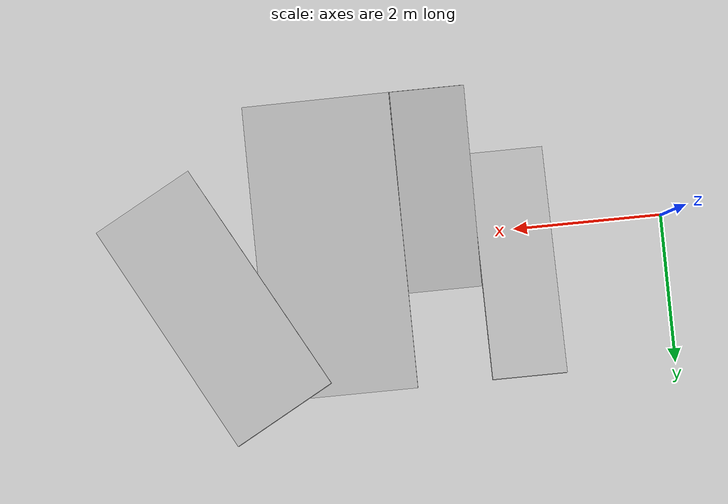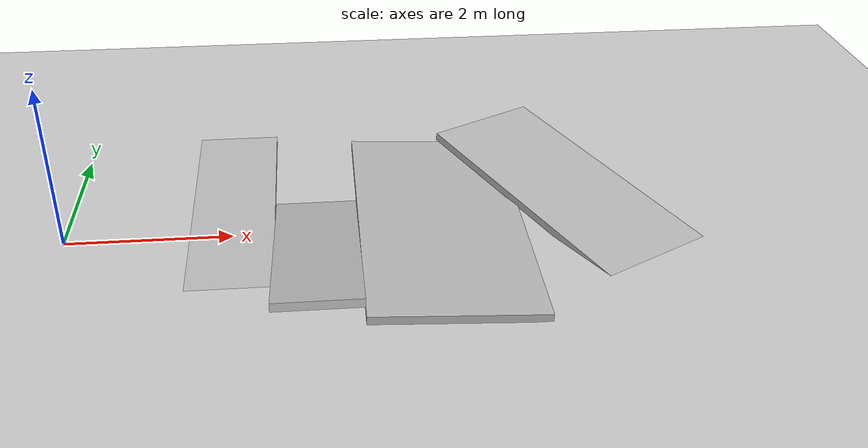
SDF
<?xml version="1.0" ?>
<sdf version="1.6">
  <!-- Robustness world with deterministic bumps along the positive X direction. -->
  <world name="rough_world">
    <!-- Match the nominal-world solver for non-formal diagnostic use. -->
    <physics name="benchmark_ode" type="ode" default="true">
      <max_step_size>0.001</max_step_size>
      <real_time_factor>1.0</real_time_factor>
      <real_time_update_rate>1000</real_time_update_rate>
      <ode>
        <solver><type>quick</type><iters>50</iters><sor>1.3</sor></solver>
        <constraints>
          <cfm>0.0</cfm><erp>0.2</erp>
          <contact_max_correcting_vel>100.0</contact_max_correcting_vel>
          <contact_surface_layer>0.001</contact_surface_layer>
        </constraints>
      </ode>
    </physics>
    <include>
      <uri>model://sun</uri>
    </include>
    <include>
      <uri>model://ground_plane</uri>
    </include>

    <!-- Each obstacle is a static collision box. Small roll/pitch/yaw offsets
         produce repeatable chassis disturbances without random terrain. -->
    <model name="bump_1">
      <static>true</static>
      <pose>2 0 0.05 0.1 0 0</pose>
      <link name="link"><visual name="visual"><geometry><box><size>1 4 0.1</size></box></geometry></visual><collision name="collision"><geometry><box><size>1 4 0.1</size></box></geometry></collision></link>
    </model>

    <!-- Opposite roll angle tests recovery after the first lateral disturbance. -->
    <model name="bump_2">
      <static>true</static>
      <pose>3 0 0.05 -0.15 0 0</pose>
      <link name="link"><visual name="visual"><geometry><box><size>1 4 0.1</size></box></geometry></visual><collision name="collision"><geometry><box><size>1 4 0.1</size></box></geometry></collision></link>
    </model>

    <!-- Longer, slightly pitched platform creates a sustained uneven section. -->
    <model name="bump_3">
      <static>true</static>
      <pose>4.5 0 0.08 0 0.05 0</pose>
      <link name="link"><visual name="visual"><geometry><box><size>2 4 0.1</size></box></geometry></visual><collision name="collision"><geometry><box><size>2 4 0.1</size></box></geometry></collision></link>
    </model>

    <!-- Final rotated bump excites combined roll/yaw effects later in the path. -->
    <model name="bump_4">
      <static>true</static>
      <pose>6.5 0 0.04 0.1 0 0.5</pose>
      <link name="link"><visual name="visual"><geometry><box><size>1.5 5 0.1</size></box></geometry></visual><collision name="collision"><geometry><box><size>1.5 5 0.1</size></box></geometry></collision></link>
    </model>
  </world>
</sdf>
